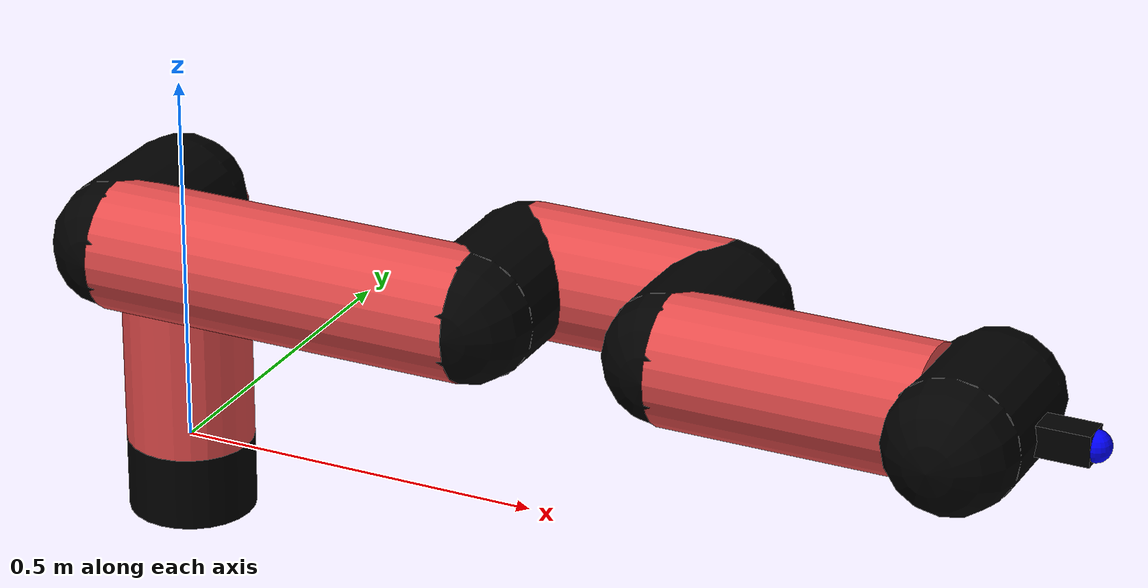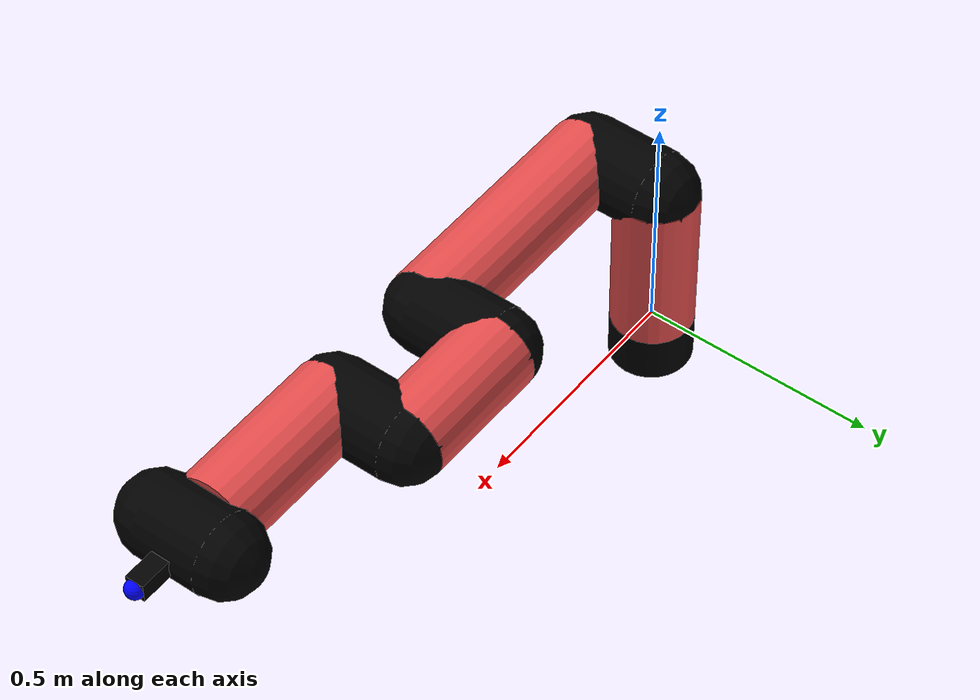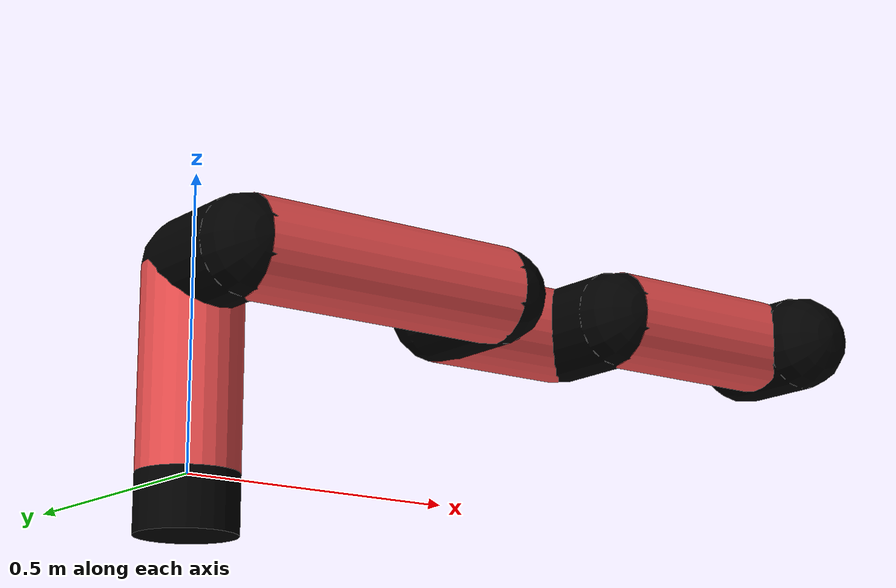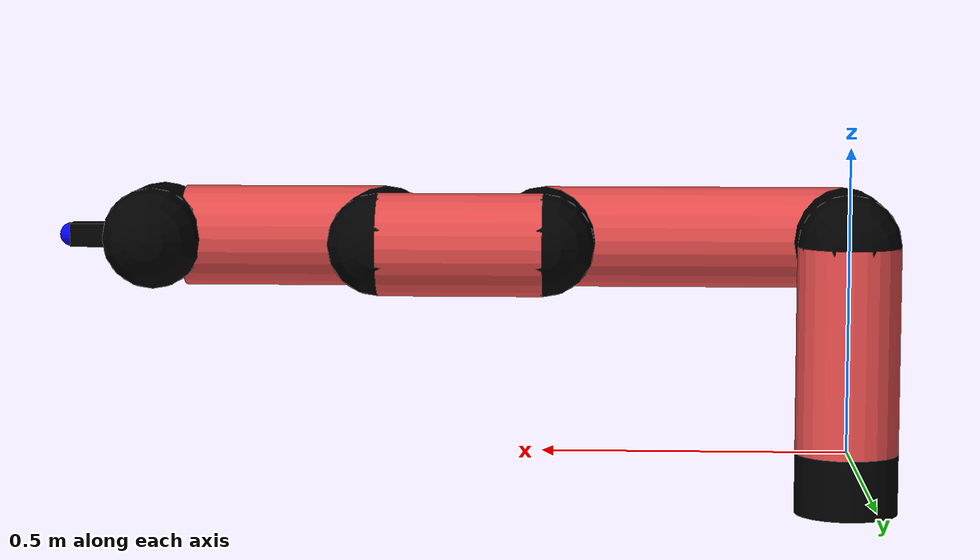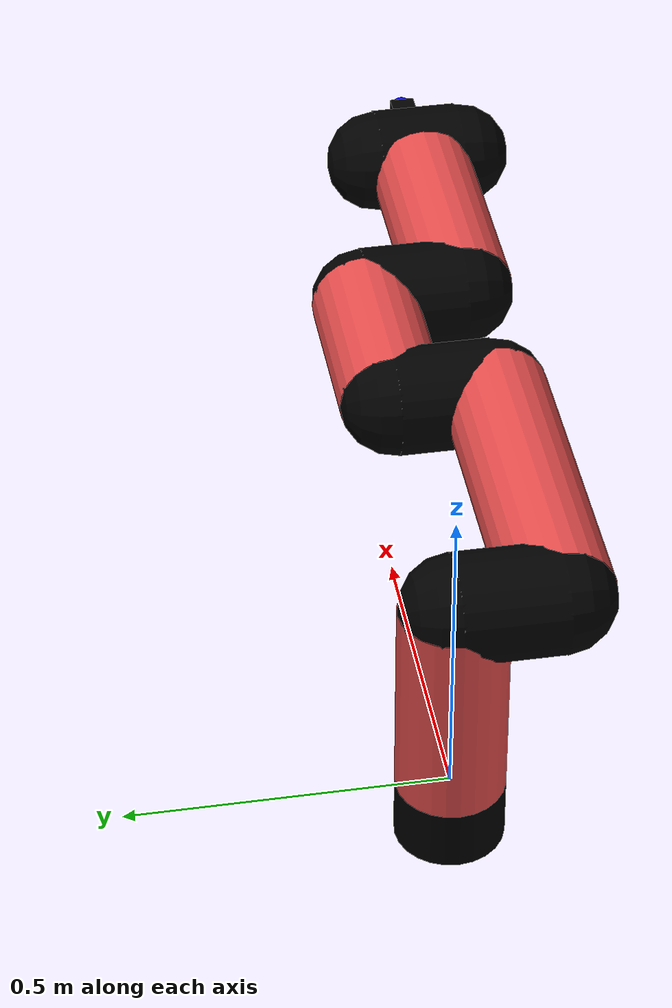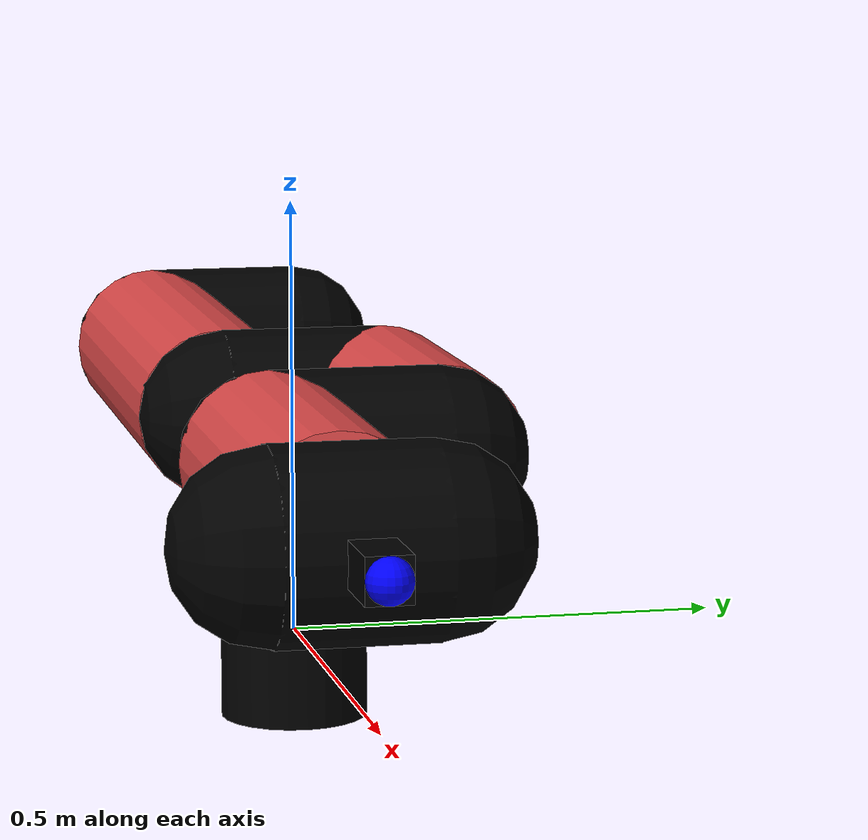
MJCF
<mujoco model="manipulator">
		<compiler angle="degree" coordinate="local" inertiafromgeom="auto" meshdir="meshes/"/>
		<option gravity="0 0 0" integrator="RK4" iterations="30" timestep="0.01"/>

		<default>
		<joint armature="1" limited="true" stiffness="10" damping="15" frictionloss="5.0"/>
		<geom conaffinity="1" condim="3" contype="1" friction=".5 .1 .1" margin="0.002"/>
		<motor ctrllimited="true"/>
		<position ctrllimited="true"/>
		</default>

		<asset>
		<texture builtin="gradient" height="100" rgb1="1.0 1.0 1.0" rgb2="1.0 1.0 1.0" type="skybox" width="100"/>
		<texture builtin="flat" height="32" name="arm_tex" rgb1="0.9 0.3 0.3" type="2d" width="32"/>
		<texture builtin="flat" height="32" name="gripper_tex" rgb1="0.0 0.0 0.0" type="cube" width="32"/>

		<material name="arm_mat" shininess="0.1" specular="0.1" texture="arm_tex"/>
		<material name="gripper_mat" shininess="1" specular="1" texture="gripper_tex"/>
		</asset>

		<worldbody>
		<light cutoff="45" diffuse=".8 .8 .8" dir="0 0.16 -1" directional="false" name="light" pos="0 -2.0 8.0" specular="0.3 0.3 0.3"/>

		<body name="base_link" pos="0 0 -0.1">
		<geom fromto="0 0 0 0 0 0.1" material="arm_mat" name="base_link" rgba="0.0 0.0 0.0 1" size="0.085" type="cylinder"/>
		</body>

		<body name="l1" pos="0 0 0">
<geom fromto="0 0 0 0 0 0.34" material="arm_mat" name="l1" rgba="0.9 0.3 0.3 1" size="0.085" type="cylinder"/>
<geom fromto="0 0 0.34 0 -0.16 0.34" material="arm_mat" name="l1_ex" rgba="0.0 0.0 0.0 1" size="0.085" type="capsule"/>
<joint axis="0 0 1" name="j1" pos="0 0 0" range="-90 90" damping="30.59" frictionloss="11.8"/>

<body name="l2" pos="0 -0.16 0.34">
<geom fromto="0 0 0 0.5 0 0" material="arm_mat" name="l2" rgba="0.9 0.3 0.3 1" size="0.085" type="cylinder"/>
<geom fromto="0.5 0 0 0.5 0.16 0" material="arm_mat" name="l2_ex" rgba="0.0 0.0 0.0 1" size="0.085" type="capsule"/>
<joint axis="-0.04 0.77 0.02" name="j2" pos="0 0 0" range="-90 60" damping="36.79" frictionloss="10.39"/>

<body name="l3" pos="0.5 0.16 0">
<geom fromto="0 0 0 0.27 0 0" material="arm_mat" name="l3" rgba="0.9 0.3 0.3 1" size="0.085" type="cylinder"/>
<geom fromto="0.27 0 0 0.27 -0.16 0" material="arm_mat" name="l3_ex" rgba="0.0 0.0 0.0 1" size="0.085" type="capsule"/>
<joint axis="0.08 1.01 0.22" name="j3" pos="0 0 0" range="-30 60" damping="30.72" frictionloss="12.29"/>

<body name="l4" pos="0.27 -0.16 0">
<geom fromto="0 0 0 0.34 0 0" material="arm_mat" name="l4" rgba="0.9 0.3 0.3 1" size="0.085" type="cylinder"/>
<joint axis="0.04 1.2 -0.18" name="j4" pos="0 0 0" range="-30 60" damping="34.81" frictionloss="11.93"/>

<body name="gripper" pos="0.34 0 0">
<geom fromto="0.05 -0.07 0 0.05 0.07 0" material="gripper_mat" name="gripper" rgba="0.0 0.0 0.0 1" size="0.085" type="capsule"/><joint axis="1 0 0" name="j5" pos="0 0 0" range="-90 90" damping="15" frictionloss="5.0"/><body name="finger" pos="0.1 0 0">
<geom fromto="0 0.0 0 0.1 0.0 0" material="gripper_mat" name="finger" rgba="0.0 0.0 0.0 1" size="0.020 0.06 0.06" type="box"/>
</body>
<site name="current" pos="0.2 0. 0.0" rgba="0. 0. 1.0 1" size="0.02" type="sphere"/>
</body>
</body>
</body>
</body>
</body>
</worldbody>
<actuator>
<motor ctrllimited="true" ctrlrange="-1.0 1.0" joint="j1" gear="69.29"/>
<motor ctrllimited="true" ctrlrange="-1.0 1.0" joint="j2" gear="78.37"/>
<motor ctrllimited="true" ctrlrange="-1.0 1.0" joint="j3" gear="60.23"/>
<motor ctrllimited="true" ctrlrange="-1.0 1.0" joint="j4" gear="89.62"/>
<motor ctrllimited="true" ctrlrange="-1.0 1.0" joint="j5" gear="80"/>
</actuator>
</mujoco>
